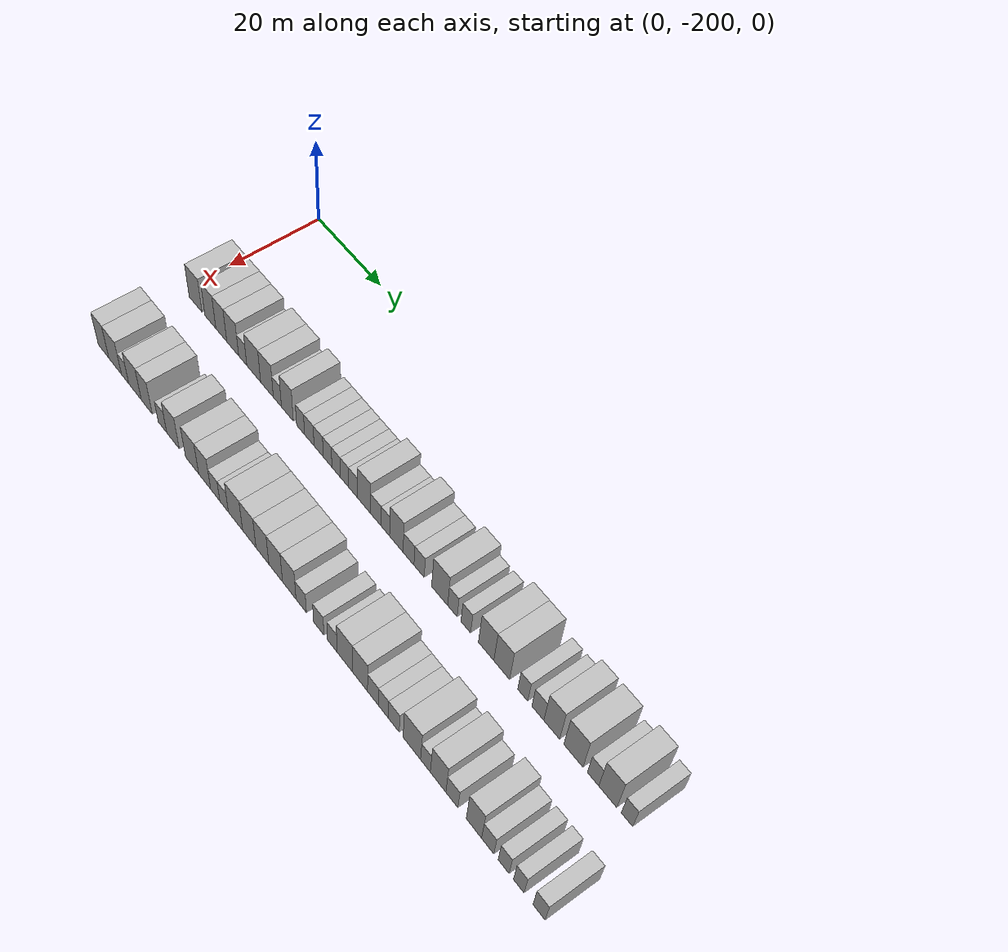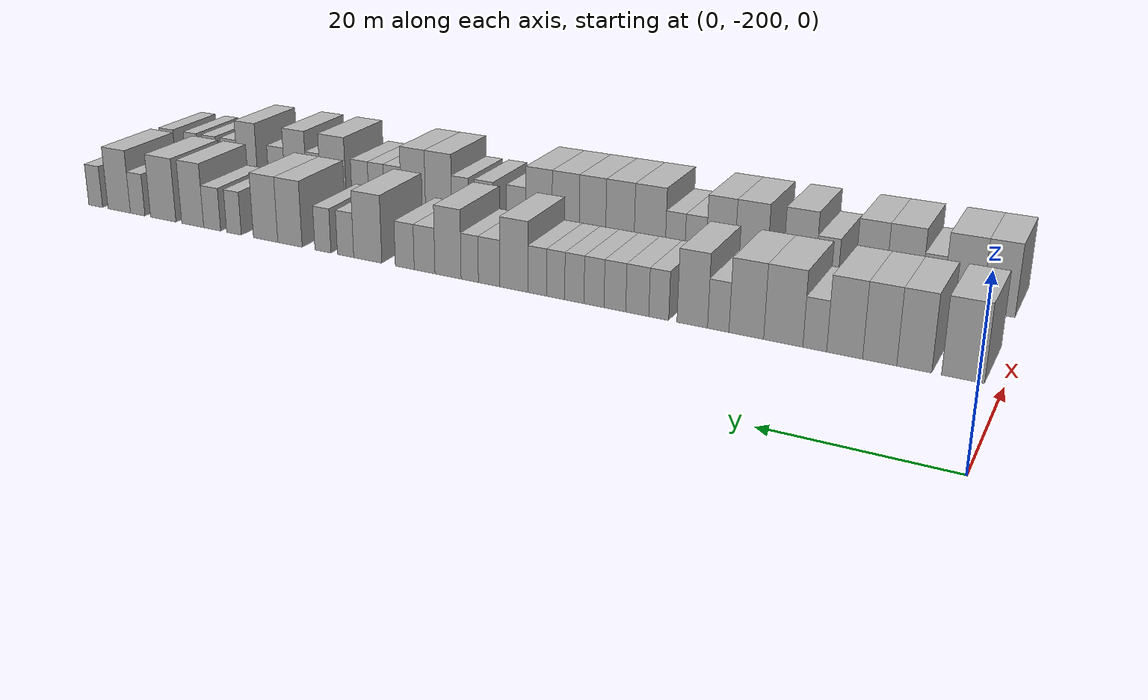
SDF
<sdf version="1.6">
 <world name="default">
  <model name="building_1">
   <static>1</static>
   <pose>25.0000 -195.8124 0 0.000000 0.000000 0.000000</pose>
   <link name="link">
    <pose>0 0 4.50 0 0 0</pose>
    <collision name="collision"><geometry><box><size>10.0000 4.3751 9.0000</size></box></geometry></collision>
    <visual name="visual">
     <cast_shadows>0</cast_shadows>
     <geometry><box><size>10.0000 4.3751 9.0000</size></box></geometry>
     <material>
      <script>
       <uri>model://HANNAS_wall/materials/scripts</uri>
       <uri>model://HANNAS_wall/materials/textures</uri>
       <name>vrc/HANNAS_wall</name>
      </script>
     </material>
    </visual>
   </link>
  </model>
  <model name="building_2">
   <static>1</static>
   <pose>25.0000 -190.7950 0 0.000000 0.000000 0.000000</pose>
   <link name="link">
    <pose>0 0 4.50 0 0 0</pose>
    <collision name="collision"><geometry><box><size>10.0000 3.6598 9.0000</size></box></geometry></collision>
    <visual name="visual">
     <cast_shadows>0</cast_shadows>
     <geometry><box><size>10.0000 3.6598 9.0000</size></box></geometry>
     <material>
      <script>
       <uri>model://HANNAS_wall/materials/scripts</uri>
       <uri>model://HANNAS_wall/materials/textures</uri>
       <name>vrc/HANNAS_wall</name>
      </script>
     </material>
    </visual>
   </link>
  </model>
  <model name="building_3">
   <static>1</static>
   <pose>25.0000 -187.1419 0 0.000000 0.000000 0.000000</pose>
   <link name="link">
    <pose>0 0 4.50 0 0 0</pose>
    <collision name="collision"><geometry><box><size>10.0000 3.6464 9.0000</size></box></geometry></collision>
    <visual name="visual">
     <cast_shadows>0</cast_shadows>
     <geometry><box><size>10.0000 3.6464 9.0000</size></box></geometry>
     <material>
      <script>
       <uri>model://HANNAS_wall/materials/scripts</uri>
       <uri>model://HANNAS_wall/materials/textures</uri>
       <name>vrc/HANNAS_wall</name>
      </script>
     </material>
    </visual>
   </link>
  </model>
  <model name="building_4">
   <static>1</static>
   <pose>25.0000 -183.3582 0 0.000000 0.000000 0.000000</pose>
   <link name="link">
    <pose>0 0 4.50 0 0 0</pose>
    <collision name="collision"><geometry><box><size>10.0000 3.9209 9.0000</size></box></geometry></collision>
    <visual name="visual">
     <cast_shadows>0</cast_shadows>
     <geometry><box><size>10.0000 3.9209 9.0000</size></box></geometry>
     <material>
      <script>
       <uri>model://HANNAS_wall/materials/scripts</uri>
       <uri>model://HANNAS_wall/materials/textures</uri>
       <name>vrc/HANNAS_wall</name>
      </script>
     </material>
    </visual>
   </link>
  </model>
  <model name="building_5">
   <static>1</static>
   <pose>25.0000 -180.0777 0 0.000000 0.000000 0.000000</pose>
   <link name="link">
    <pose>0 0 3.00 0 0 0</pose>
    <collision name="collision"><geometry><box><size>10.0000 2.6402 6.0000</size></box></geometry></collision>
    <visual name="visual">
     <cast_shadows>0</cast_shadows>
     <geometry><box><size>10.0000 2.6402 6.0000</size></box></geometry>
     <material>
      <script>
       <uri>model://HANNAS_wall/materials/scripts</uri>
       <uri>model://HANNAS_wall/materials/textures</uri>
       <name>vrc/HANNAS_wall</name>
      </script>
     </material>
    </visual>
   </link>
  </model>
  <model name="building_6">
   <static>1</static>
   <pose>25.0000 -176.5355 0 0.000000 0.000000 0.000000</pose>
   <link name="link">
    <pose>0 0 4.50 0 0 0</pose>
    <collision name="collision"><geometry><box><size>10.0000 4.4442 9.0000</size></box></geometry></collision>
    <visual name="visual">
     <cast_shadows>0</cast_shadows>
     <geometry><box><size>10.0000 4.4442 9.0000</size></box></geometry>
     <material>
      <script>
       <uri>model://HANNAS_wall/materials/scripts</uri>
       <uri>model://HANNAS_wall/materials/textures</uri>
       <name>vrc/HANNAS_wall</name>
      </script>
     </material>
    </visual>
   </link>
  </model>
  <model name="building_7">
   <static>1</static>
   <pose>25.0000 -172.2996 0 0.000000 0.000000 0.000000</pose>
   <link name="link">
    <pose>0 0 4.50 0 0 0</pose>
    <collision name="collision"><geometry><box><size>10.0000 4.0277 9.0000</size></box></geometry></collision>
    <visual name="visual">
     <cast_shadows>0</cast_shadows>
     <geometry><box><size>10.0000 4.0277 9.0000</size></box></geometry>
     <material>
      <script>
       <uri>model://HANNAS_wall/materials/scripts</uri>
       <uri>model://HANNAS_wall/materials/textures</uri>
       <name>vrc/HANNAS_wall</name>
      </script>
     </material>
    </visual>
   </link>
  </model>
  <model name="building_8">
   <static>1</static>
   <pose>25.0000 -169.0211 0 0.000000 0.000000 0.000000</pose>
   <link name="link">
    <pose>0 0 3.00 0 0 0</pose>
    <collision name="collision"><geometry><box><size>10.0000 2.5293 6.0000</size></box></geometry></collision>
    <visual name="visual">
     <cast_shadows>0</cast_shadows>
     <geometry><box><size>10.0000 2.5293 6.0000</size></box></geometry>
     <material>
      <script>
       <uri>model://HANNAS_wall/materials/scripts</uri>
       <uri>model://HANNAS_wall/materials/textures</uri>
       <name>vrc/HANNAS_wall</name>
      </script>
     </material>
    </visual>
   </link>
  </model>
  <model name="building_9">
   <static>1</static>
   <pose>25.0000 -165.9167 0 0.000000 0.000000 0.000000</pose>
   <link name="link">
    <pose>0 0 4.50 0 0 0</pose>
    <collision name="collision"><geometry><box><size>10.0000 3.6795 9.0000</size></box></geometry></collision>
    <visual name="visual">
     <cast_shadows>0</cast_shadows>
     <geometry><box><size>10.0000 3.6795 9.0000</size></box></geometry>
     <material>
      <script>
       <uri>model://HANNAS_wall/materials/scripts</uri>
       <uri>model://HANNAS_wall/materials/textures</uri>
       <name>vrc/HANNAS_wall</name>
      </script>
     </material>
    </visual>
   </link>
  </model>
  <model name="building_10">
   <static>1</static>
   <pose>25.0000 -161.8491 0 0.000000 0.000000 0.000000</pose>
   <link name="link">
    <pose>0 0 3.00 0 0 0</pose>
    <collision name="collision"><geometry><box><size>10.0000 2.4556 6.0000</size></box></geometry></collision>
    <visual name="visual">
     <cast_shadows>0</cast_shadows>
     <geometry><box><size>10.0000 2.4556 6.0000</size></box></geometry>
     <material>
      <script>
       <uri>model://HANNAS_wall/materials/scripts</uri>
       <uri>model://HANNAS_wall/materials/textures</uri>
       <name>vrc/HANNAS_wall</name>
      </script>
     </material>
    </visual>
   </link>
  </model>
  <model name="building_11">
   <static>1</static>
   <pose>25.0000 -159.1854 0 0.000000 0.000000 0.000000</pose>
   <link name="link">
    <pose>0 0 3.00 0 0 0</pose>
    <collision name="collision"><geometry><box><size>10.0000 2.8718 6.0000</size></box></geometry></collision>
    <visual name="visual">
     <cast_shadows>0</cast_shadows>
     <geometry><box><size>10.0000 2.8718 6.0000</size></box></geometry>
     <material>
      <script>
       <uri>model://HANNAS_wall/materials/scripts</uri>
       <uri>model://HANNAS_wall/materials/textures</uri>
       <name>vrc/HANNAS_wall</name>
      </script>
     </material>
    </visual>
   </link>
  </model>
  <model name="building_12">
   <static>1</static>
   <pose>25.0000 -156.3743 0 0.000000 0.000000 0.000000</pose>
   <link name="link">
    <pose>0 0 3.00 0 0 0</pose>
    <collision name="collision"><geometry><box><size>10.0000 2.7504 6.0000</size></box></geometry></collision>
    <visual name="visual">
     <cast_shadows>0</cast_shadows>
     <geometry><box><size>10.0000 2.7504 6.0000</size></box></geometry>
     <material>
      <script>
       <uri>model://HANNAS_wall/materials/scripts</uri>
       <uri>model://HANNAS_wall/materials/textures</uri>
       <name>vrc/HANNAS_wall</name>
      </script>
     </material>
    </visual>
   </link>
  </model>
  <model name="building_13">
   <static>1</static>
   <pose>25.0000 -153.7160 0 0.000000 0.000000 0.000000</pose>
   <link name="link">
    <pose>0 0 3.00 0 0 0</pose>
    <collision name="collision"><geometry><box><size>10.0000 2.5661 6.0000</size></box></geometry></collision>
    <visual name="visual">
     <cast_shadows>0</cast_shadows>
     <geometry><box><size>10.0000 2.5661 6.0000</size></box></geometry>
     <material>
      <script>
       <uri>model://HANNAS_wall/materials/scripts</uri>
       <uri>model://HANNAS_wall/materials/textures</uri>
       <name>vrc/HANNAS_wall</name>
      </script>
     </material>
    </visual>
   </link>
  </model>
  <model name="building_14">
   <static>1</static>
   <pose>25.0000 -151.1776 0 0.000000 0.000000 0.000000</pose>
   <link name="link">
    <pose>0 0 3.00 0 0 0</pose>
    <collision name="collision"><geometry><box><size>10.0000 2.5106 6.0000</size></box></geometry></collision>
    <visual name="visual">
     <cast_shadows>0</cast_shadows>
     <geometry><box><size>10.0000 2.5106 6.0000</size></box></geometry>
     <material>
      <script>
       <uri>model://HANNAS_wall/materials/scripts</uri>
       <uri>model://HANNAS_wall/materials/textures</uri>
       <name>vrc/HANNAS_wall</name>
      </script>
     </material>
    </visual>
   </link>
  </model>
  <model name="building_15">
   <static>1</static>
   <pose>25.0000 -148.7211 0 0.000000 0.000000 0.000000</pose>
   <link name="link">
    <pose>0 0 3.00 0 0 0</pose>
    <collision name="collision"><geometry><box><size>10.0000 2.4023 6.0000</size></box></geometry></collision>
    <visual name="visual">
     <cast_shadows>0</cast_shadows>
     <geometry><box><size>10.0000 2.4023 6.0000</size></box></geometry>
     <material>
      <script>
       <uri>model://HANNAS_wall/materials/scripts</uri>
       <uri>model://HANNAS_wall/materials/textures</uri>
       <name>vrc/HANNAS_wall</name>
      </script>
     </material>
    </visual>
   </link>
  </model>
  <model name="building_16">
   <static>1</static>
   <pose>25.0000 -146.2873 0 0.000000 0.000000 0.000000</pose>
   <link name="link">
    <pose>0 0 3.00 0 0 0</pose>
    <collision name="collision"><geometry><box><size>10.0000 2.4653 6.0000</size></box></geometry></collision>
    <visual name="visual">
     <cast_shadows>0</cast_shadows>
     <geometry><box><size>10.0000 2.4653 6.0000</size></box></geometry>
     <material>
      <script>
       <uri>model://HANNAS_wall/materials/scripts</uri>
       <uri>model://HANNAS_wall/materials/textures</uri>
       <name>vrc/HANNAS_wall</name>
      </script>
     </material>
    </visual>
   </link>
  </model>
  <model name="building_17">
   <static>1</static>
   <pose>25.0000 -143.1473 0 0.000000 0.000000 0.000000</pose>
   <link name="link">
    <pose>0 0 4.50 0 0 0</pose>
    <collision name="collision"><geometry><box><size>10.0000 3.8147 9.0000</size></box></geometry></collision>
    <visual name="visual">
     <cast_shadows>0</cast_shadows>
     <geometry><box><size>10.0000 3.8147 9.0000</size></box></geometry>
     <material>
      <script>
       <uri>model://HANNAS_wall/materials/scripts</uri>
       <uri>model://HANNAS_wall/materials/textures</uri>
       <name>vrc/HANNAS_wall</name>
      </script>
     </material>
    </visual>
   </link>
  </model>
  <model name="building_18">
   <static>1</static>
   <pose>25.0000 -139.7681 0 0.000000 0.000000 0.000000</pose>
   <link name="link">
    <pose>0 0 3.00 0 0 0</pose>
    <collision name="collision"><geometry><box><size>10.0000 2.9437 6.0000</size></box></geometry></collision>
    <visual name="visual">
     <cast_shadows>0</cast_shadows>
     <geometry><box><size>10.0000 2.9437 6.0000</size></box></geometry>
     <material>
      <script>
       <uri>model://HANNAS_wall/materials/scripts</uri>
       <uri>model://HANNAS_wall/materials/textures</uri>
       <name>vrc/HANNAS_wall</name>
      </script>
     </material>
    </visual>
   </link>
  </model>
  <model name="building_19">
   <static>1</static>
   <pose>25.0000 -137.0899 0 0.000000 0.000000 0.000000</pose>
   <link name="link">
    <pose>0 0 3.00 0 0 0</pose>
    <collision name="collision"><geometry><box><size>10.0000 2.4126 6.0000</size></box></geometry></collision>
    <visual name="visual">
     <cast_shadows>0</cast_shadows>
     <geometry><box><size>10.0000 2.4126 6.0000</size></box></geometry>
     <material>
      <script>
       <uri>model://HANNAS_wall/materials/scripts</uri>
       <uri>model://HANNAS_wall/materials/textures</uri>
       <name>vrc/HANNAS_wall</name>
      </script>
     </material>
    </visual>
   </link>
  </model>
  <model name="building_20">
   <static>1</static>
   <pose>25.0000 -134.0270 0 0.000000 0.000000 0.000000</pose>
   <link name="link">
    <pose>0 0 4.50 0 0 0</pose>
    <collision name="collision"><geometry><box><size>10.0000 3.7131 9.0000</size></box></geometry></collision>
    <visual name="visual">
     <cast_shadows>0</cast_shadows>
     <geometry><box><size>10.0000 3.7131 9.0000</size></box></geometry>
     <material>
      <script>
       <uri>model://HANNAS_wall/materials/scripts</uri>
       <uri>model://HANNAS_wall/materials/textures</uri>
       <name>vrc/HANNAS_wall</name>
      </script>
     </material>
    </visual>
   </link>
  </model>
  <model name="building_21">
   <static>1</static>
   <pose>25.0000 -130.6746 0 0.000000 0.000000 0.000000</pose>
   <link name="link">
    <pose>0 0 3.00 0 0 0</pose>
    <collision name="collision"><geometry><box><size>10.0000 2.9919 6.0000</size></box></geometry></collision>
    <visual name="visual">
     <cast_shadows>0</cast_shadows>
     <geometry><box><size>10.0000 2.9919 6.0000</size></box></geometry>
     <material>
      <script>
       <uri>model://HANNAS_wall/materials/scripts</uri>
       <uri>model://HANNAS_wall/materials/textures</uri>
       <name>vrc/HANNAS_wall</name>
      </script>
     </material>
    </visual>
   </link>
  </model>
  <model name="building_22">
   <static>1</static>
   <pose>25.0000 -127.7962 0 0.000000 0.000000 0.000000</pose>
   <link name="link">
    <pose>0 0 3.00 0 0 0</pose>
    <collision name="collision"><geometry><box><size>10.0000 2.7648 6.0000</size></box></geometry></collision>
    <visual name="visual">
     <cast_shadows>0</cast_shadows>
     <geometry><box><size>10.0000 2.7648 6.0000</size></box></geometry>
     <material>
      <script>
       <uri>model://HANNAS_wall/materials/scripts</uri>
       <uri>model://HANNAS_wall/materials/textures</uri>
       <name>vrc/HANNAS_wall</name>
      </script>
     </material>
    </visual>
   </link>
  </model>
  <model name="building_23">
   <static>1</static>
   <pose>25.0000 -122.2957 0 0.000000 0.000000 0.000000</pose>
   <link name="link">
    <pose>0 0 4.50 0 0 0</pose>
    <collision name="collision"><geometry><box><size>10.0000 4.2361 9.0000</size></box></geometry></collision>
    <visual name="visual">
     <cast_shadows>0</cast_shadows>
     <geometry><box><size>10.0000 4.2361 9.0000</size></box></geometry>
     <material>
      <script>
       <uri>model://HANNAS_wall/materials/scripts</uri>
       <uri>model://HANNAS_wall/materials/textures</uri>
       <name>vrc/HANNAS_wall</name>
      </script>
     </material>
    </visual>
   </link>
  </model>
  <model name="building_24">
   <static>1</static>
   <pose>25.0000 -118.9344 0 0.000000 0.000000 0.000000</pose>
   <link name="link">
    <pose>0 0 3.00 0 0 0</pose>
    <collision name="collision"><geometry><box><size>10.0000 2.4865 6.0000</size></box></geometry></collision>
    <visual name="visual">
     <cast_shadows>0</cast_shadows>
     <geometry><box><size>10.0000 2.4865 6.0000</size></box></geometry>
     <material>
      <script>
       <uri>model://HANNAS_wall/materials/scripts</uri>
       <uri>model://HANNAS_wall/materials/textures</uri>
       <name>vrc/HANNAS_wall</name>
      </script>
     </material>
    </visual>
   </link>
  </model>
  <model name="building_25">
   <static>1</static>
   <pose>25.0000 -115.4437 0 0.000000 0.000000 0.000000</pose>
   <link name="link">
    <pose>0 0 3.00 0 0 0</pose>
    <collision name="collision"><geometry><box><size>10.0000 2.4949 6.0000</size></box></geometry></collision>
    <visual name="visual">
     <cast_shadows>0</cast_shadows>
     <geometry><box><size>10.0000 2.4949 6.0000</size></box></geometry>
     <material>
      <script>
       <uri>model://HANNAS_wall/materials/scripts</uri>
       <uri>model://HANNAS_wall/materials/textures</uri>
       <name>vrc/HANNAS_wall</name>
      </script>
     </material>
    </visual>
   </link>
  </model>
  <model name="building_26">
   <static>1</static>
   <pose>25.0000 -110.2514 0 0.000000 0.000000 0.000000</pose>
   <link name="link">
    <pose>0 0 4.50 0 0 0</pose>
    <collision name="collision"><geometry><box><size>10.0000 3.8897 9.0000</size></box></geometry></collision>
    <visual name="visual">
     <cast_shadows>0</cast_shadows>
     <geometry><box><size>10.0000 3.8897 9.0000</size></box></geometry>
     <material>
      <script>
       <uri>model://HANNAS_wall/materials/scripts</uri>
       <uri>model://HANNAS_wall/materials/textures</uri>
       <name>vrc/HANNAS_wall</name>
      </script>
     </material>
    </visual>
   </link>
  </model>
  <model name="building_27">
   <static>1</static>
   <pose>25.0000 -106.3323 0 0.000000 0.000000 0.000000</pose>
   <link name="link">
    <pose>0 0 4.50 0 0 0</pose>
    <collision name="collision"><geometry><box><size>10.0000 3.9485 9.0000</size></box></geometry></collision>
    <visual name="visual">
     <cast_shadows>0</cast_shadows>
     <geometry><box><size>10.0000 3.9485 9.0000</size></box></geometry>
     <material>
      <script>
       <uri>model://HANNAS_wall/materials/scripts</uri>
       <uri>model://HANNAS_wall/materials/textures</uri>
       <name>vrc/HANNAS_wall</name>
      </script>
     </material>
    </visual>
   </link>
  </model>
  <model name="building_28">
   <static>1</static>
   <pose>25.0000 -101.1371 0 0.000000 0.000000 0.000000</pose>
   <link name="link">
    <pose>0 0 3.00 0 0 0</pose>
    <collision name="collision"><geometry><box><size>10.0000 2.4418 6.0000</size></box></geometry></collision>
    <visual name="visual">
     <cast_shadows>0</cast_shadows>
     <geometry><box><size>10.0000 2.4418 6.0000</size></box></geometry>
     <material>
      <script>
       <uri>model://HANNAS_wall/materials/scripts</uri>
       <uri>model://HANNAS_wall/materials/textures</uri>
       <name>vrc/HANNAS_wall</name>
      </script>
     </material>
    </visual>
   </link>
  </model>
  <model name="building_29">
   <static>1</static>
   <pose>25.0000 -97.4838 0 0.000000 0.000000 0.000000</pose>
   <link name="link">
    <pose>0 0 3.00 0 0 0</pose>
    <collision name="collision"><geometry><box><size>10.0000 2.8649 6.0000</size></box></geometry></collision>
    <visual name="visual">
     <cast_shadows>0</cast_shadows>
     <geometry><box><size>10.0000 2.8649 6.0000</size></box></geometry>
     <material>
      <script>
       <uri>model://HANNAS_wall/materials/scripts</uri>
       <uri>model://HANNAS_wall/materials/textures</uri>
       <name>vrc/HANNAS_wall</name>
      </script>
     </material>
    </visual>
   </link>
  </model>
  <model name="building_30">
   <static>1</static>
   <pose>25.0000 -94.1622 0 0.000000 0.000000 0.000000</pose>
   <link name="link">
    <pose>0 0 4.50 0 0 0</pose>
    <collision name="collision"><geometry><box><size>10.0000 3.7783 9.0000</size></box></geometry></collision>
    <visual name="visual">
     <cast_shadows>0</cast_shadows>
     <geometry><box><size>10.0000 3.7783 9.0000</size></box></geometry>
     <material>
      <script>
       <uri>model://HANNAS_wall/materials/scripts</uri>
       <uri>model://HANNAS_wall/materials/textures</uri>
       <name>vrc/HANNAS_wall</name>
      </script>
     </material>
    </visual>
   </link>
  </model>
  <model name="building_31">
   <static>1</static>
   <pose>25.0000 -89.0398 0 0.000000 0.000000 0.000000</pose>
   <link name="link">
    <pose>0 0 4.50 0 0 0</pose>
    <collision name="collision"><geometry><box><size>10.0000 4.4664 9.0000</size></box></geometry></collision>
    <visual name="visual">
     <cast_shadows>0</cast_shadows>
     <geometry><box><size>10.0000 4.4664 9.0000</size></box></geometry>
     <material>
      <script>
       <uri>model://HANNAS_wall/materials/scripts</uri>
       <uri>model://HANNAS_wall/materials/textures</uri>
       <name>vrc/HANNAS_wall</name>
      </script>
     </material>
    </visual>
   </link>
  </model>
  <model name="building_32">
   <static>1</static>
   <pose>25.0000 -84.5046 0 0.000000 0.000000 0.000000</pose>
   <link name="link">
    <pose>0 0 3.00 0 0 0</pose>
    <collision name="collision"><geometry><box><size>10.0000 2.6039 6.0000</size></box></geometry></collision>
    <visual name="visual">
     <cast_shadows>0</cast_shadows>
     <geometry><box><size>10.0000 2.6039 6.0000</size></box></geometry>
     <material>
      <script>
       <uri>model://HANNAS_wall/materials/scripts</uri>
       <uri>model://HANNAS_wall/materials/textures</uri>
       <name>vrc/HANNAS_wall</name>
      </script>
     </material>
    </visual>
   </link>
  </model>
  <model name="building_33">
   <static>1</static>
   <pose>25.0000 -81.1677 0 0.000000 0.000000 0.000000</pose>
   <link name="link">
    <pose>0 0 4.50 0 0 0</pose>
    <collision name="collision"><geometry><box><size>10.0000 4.0699 9.0000</size></box></geometry></collision>
    <visual name="visual">
     <cast_shadows>0</cast_shadows>
     <geometry><box><size>10.0000 4.0699 9.0000</size></box></geometry>
     <material>
      <script>
       <uri>model://HANNAS_wall/materials/scripts</uri>
       <uri>model://HANNAS_wall/materials/textures</uri>
       <name>vrc/HANNAS_wall</name>
      </script>
     </material>
    </visual>
   </link>
  </model>
  <model name="building_34">
   <static>1</static>
   <pose>25.0000 -76.8595 0 0.000000 0.000000 0.000000</pose>
   <link name="link">
    <pose>0 0 3.00 0 0 0</pose>
    <collision name="collision"><geometry><box><size>10.0000 2.5464 6.0000</size></box></geometry></collision>
    <visual name="visual">
     <cast_shadows>0</cast_shadows>
     <geometry><box><size>10.0000 2.5464 6.0000</size></box></geometry>
     <material>
      <script>
       <uri>model://HANNAS_wall/materials/scripts</uri>
       <uri>model://HANNAS_wall/materials/textures</uri>
       <name>vrc/HANNAS_wall</name>
      </script>
     </material>
    </visual>
   </link>
  </model>
  <model name="building_102">
   <static>1</static>
   <pose>44.0000 -196.1315 0 0.000000 0.000000 0.000000</pose>
   <link name="link">
    <pose>0 0 4.50 0 0 0</pose>
    <collision name="collision"><geometry><box><size>10.0000 3.7370 9.0000</size></box></geometry></collision>
    <visual name="visual">
     <cast_shadows>0</cast_shadows>
     <geometry><box><size>10.0000 3.7370 9.0000</size></box></geometry>
     <material>
      <script>
       <uri>model://HANNAS_wall/materials/scripts</uri>
       <uri>model://HANNAS_wall/materials/textures</uri>
       <name>vrc/HANNAS_wall</name>
      </script>
     </material>
    </visual>
   </link>
  </model>
  <model name="building_103">
   <static>1</static>
   <pose>44.0000 -192.0596 0 0.000000 0.000000 0.000000</pose>
   <link name="link">
    <pose>0 0 4.50 0 0 0</pose>
    <collision name="collision"><geometry><box><size>10.0000 4.4067 9.0000</size></box></geometry></collision>
    <visual name="visual">
     <cast_shadows>0</cast_shadows>
     <geometry><box><size>10.0000 4.4067 9.0000</size></box></geometry>
     <material>
      <script>
       <uri>model://HANNAS_wall/materials/scripts</uri>
       <uri>model://HANNAS_wall/materials/textures</uri>
       <name>vrc/HANNAS_wall</name>
      </script>
     </material>
    </visual>
   </link>
  </model>
  <model name="building_104">
   <static>1</static>
   <pose>44.0000 -188.5721 0 0.000000 0.000000 0.000000</pose>
   <link name="link">
    <pose>0 0 3.00 0 0 0</pose>
    <collision name="collision"><geometry><box><size>10.0000 2.5683 6.0000</size></box></geometry></collision>
    <visual name="visual">
     <cast_shadows>0</cast_shadows>
     <geometry><box><size>10.0000 2.5683 6.0000</size></box></geometry>
     <material>
      <script>
       <uri>model://HANNAS_wall/materials/scripts</uri>
       <uri>model://HANNAS_wall/materials/textures</uri>
       <name>vrc/HANNAS_wall</name>
      </script>
     </material>
    </visual>
   </link>
  </model>
  <model name="building_105">
   <static>1</static>
   <pose>44.0000 -185.1751 0 0.000000 0.000000 0.000000</pose>
   <link name="link">
    <pose>0 0 4.50 0 0 0</pose>
    <collision name="collision"><geometry><box><size>10.0000 4.2258 9.0000</size></box></geometry></collision>
    <visual name="visual">
     <cast_shadows>0</cast_shadows>
     <geometry><box><size>10.0000 4.2258 9.0000</size></box></geometry>
     <material>
      <script>
       <uri>model://HANNAS_wall/materials/scripts</uri>
       <uri>model://HANNAS_wall/materials/textures</uri>
       <name>vrc/HANNAS_wall</name>
      </script>
     </material>
    </visual>
   </link>
  </model>
  <model name="building_106">
   <static>1</static>
   <pose>44.0000 -181.2119 0 0.000000 0.000000 0.000000</pose>
   <link name="link">
    <pose>0 0 4.50 0 0 0</pose>
    <collision name="collision"><geometry><box><size>10.0000 3.7006 9.0000</size></box></geometry></collision>
    <visual name="visual">
     <cast_shadows>0</cast_shadows>
     <geometry><box><size>10.0000 3.7006 9.0000</size></box></geometry>
     <material>
      <script>
       <uri>model://HANNAS_wall/materials/scripts</uri>
       <uri>model://HANNAS_wall/materials/textures</uri>
       <name>vrc/HANNAS_wall</name>
      </script>
     </material>
    </visual>
   </link>
  </model>
  <model name="building_107">
   <static>1</static>
   <pose>44.0000 -175.9569 0 0.000000 0.000000 0.000000</pose>
   <link name="link">
    <pose>0 0 3.00 0 0 0</pose>
    <collision name="collision"><geometry><box><size>10.0000 2.8093 6.0000</size></box></geometry></collision>
    <visual name="visual">
     <cast_shadows>0</cast_shadows>
     <geometry><box><size>10.0000 2.8093 6.0000</size></box></geometry>
     <material>
      <script>
       <uri>model://HANNAS_wall/materials/scripts</uri>
       <uri>model://HANNAS_wall/materials/textures</uri>
       <name>vrc/HANNAS_wall</name>
      </script>
     </material>
    </visual>
   </link>
  </model>
  <model name="building_108">
   <static>1</static>
   <pose>44.0000 -172.5169 0 0.000000 0.000000 0.000000</pose>
   <link name="link">
    <pose>0 0 4.50 0 0 0</pose>
    <collision name="collision"><geometry><box><size>10.0000 4.0707 9.0000</size></box></geometry></collision>
    <visual name="visual">
     <cast_shadows>0</cast_shadows>
     <geometry><box><size>10.0000 4.0707 9.0000</size></box></geometry>
     <material>
      <script>
       <uri>model://HANNAS_wall/materials/scripts</uri>
       <uri>model://HANNAS_wall/materials/textures</uri>
       <name>vrc/HANNAS_wall</name>
      </script>
     </material>
    </visual>
   </link>
  </model>
  <model name="building_109">
   <static>1</static>
   <pose>44.0000 -166.3726 0 0.000000 0.000000 0.000000</pose>
   <link name="link">
    <pose>0 0 4.50 0 0 0</pose>
    <collision name="collision"><geometry><box><size>10.0000 4.2178 9.0000</size></box></geometry></collision>
    <visual name="visual">
     <cast_shadows>0</cast_shadows>
     <geometry><box><size>10.0000 4.2178 9.0000</size></box></geometry>
     <material>
      <script>
       <uri>model://HANNAS_wall/materials/scripts</uri>
       <uri>model://HANNAS_wall/materials/textures</uri>
       <name>vrc/HANNAS_wall</name>
      </script>
     </material>
    </visual>
   </link>
  </model>
  <model name="building_110">
   <static>1</static>
   <pose>44.0000 -162.3774 0 0.000000 0.000000 0.000000</pose>
   <link name="link">
    <pose>0 0 4.50 0 0 0</pose>
    <collision name="collision"><geometry><box><size>10.0000 3.7727 9.0000</size></box></geometry></collision>
    <visual name="visual">
     <cast_shadows>0</cast_shadows>
     <geometry><box><size>10.0000 3.7727 9.0000</size></box></geometry>
     <material>
      <script>
       <uri>model://HANNAS_wall/materials/scripts</uri>
       <uri>model://HANNAS_wall/materials/textures</uri>
       <name>vrc/HANNAS_wall</name>
      </script>
     </material>
    </visual>
   </link>
  </model>
  <model name="building_111">
   <static>1</static>
   <pose>44.0000 -159.0736 0 0.000000 0.000000 0.000000</pose>
   <link name="link">
    <pose>0 0 3.00 0 0 0</pose>
    <collision name="collision"><geometry><box><size>10.0000 2.8348 6.0000</size></box></geometry></collision>
    <visual name="visual">
     <cast_shadows>0</cast_shadows>
     <geometry><box><size>10.0000 2.8348 6.0000</size></box></geometry>
     <material>
      <script>
       <uri>model://HANNAS_wall/materials/scripts</uri>
       <uri>model://HANNAS_wall/materials/textures</uri>
       <name>vrc/HANNAS_wall</name>
      </script>
     </material>
    </visual>
   </link>
  </model>
  <model name="building_112">
   <static>1</static>
   <pose>44.0000 -156.3240 0 0.000000 0.000000 0.000000</pose>
   <link name="link">
    <pose>0 0 3.00 0 0 0</pose>
    <collision name="collision"><geometry><box><size>10.0000 2.6645 6.0000</size></box></geometry></collision>
    <visual name="visual">
     <cast_shadows>0</cast_shadows>
     <geometry><box><size>10.0000 2.6645 6.0000</size></box></geometry>
     <material>
      <script>
       <uri>model://HANNAS_wall/materials/scripts</uri>
       <uri>model://HANNAS_wall/materials/textures</uri>
       <name>vrc/HANNAS_wall</name>
      </script>
     </material>
    </visual>
   </link>
  </model>
  <model name="building_113">
   <static>1</static>
   <pose>44.0000 -152.8316 0 0.000000 0.000000 0.000000</pose>
   <link name="link">
    <pose>0 0 4.50 0 0 0</pose>
    <collision name="collision"><geometry><box><size>10.0000 4.3202 9.0000</size></box></geometry></collision>
    <visual name="visual">
     <cast_shadows>0</cast_shadows>
     <geometry><box><size>10.0000 4.3202 9.0000</size></box></geometry>
     <material>
      <script>
       <uri>model://HANNAS_wall/materials/scripts</uri>
       <uri>model://HANNAS_wall/materials/textures</uri>
       <name>vrc/HANNAS_wall</name>
      </script>
     </material>
    </visual>
   </link>
  </model>
  <model name="building_114">
   <static>1</static>
   <pose>44.0000 -148.6669 0 0.000000 0.000000 0.000000</pose>
   <link name="link">
    <pose>0 0 4.50 0 0 0</pose>
    <collision name="collision"><geometry><box><size>10.0000 4.0091 9.0000</size></box></geometry></collision>
    <visual name="visual">
     <cast_shadows>0</cast_shadows>
     <geometry><box><size>10.0000 4.0091 9.0000</size></box></geometry>
     <material>
      <script>
       <uri>model://HANNAS_wall/materials/scripts</uri>
       <uri>model://HANNAS_wall/materials/textures</uri>
       <name>vrc/HANNAS_wall</name>
      </script>
     </material>
    </visual>
   </link>
  </model>
  <model name="building_115">
   <static>1</static>
   <pose>44.0000 -144.7632 0 0.000000 0.000000 0.000000</pose>
   <link name="link">
    <pose>0 0 4.50 0 0 0</pose>
    <collision name="collision"><geometry><box><size>10.0000 3.7985 9.0000</size></box></geometry></collision>
    <visual name="visual">
     <cast_shadows>0</cast_shadows>
     <geometry><box><size>10.0000 3.7985 9.0000</size></box></geometry>
     <material>
      <script>
       <uri>model://HANNAS_wall/materials/scripts</uri>
       <uri>model://HANNAS_wall/materials/textures</uri>
       <name>vrc/HANNAS_wall</name>
      </script>
     </material>
    </visual>
   </link>
  </model>
  <model name="building_116">
   <static>1</static>
   <pose>44.0000 -140.8834 0 0.000000 0.000000 0.000000</pose>
   <link name="link">
    <pose>0 0 4.50 0 0 0</pose>
    <collision name="collision"><geometry><box><size>10.0000 3.9610 9.0000</size></box></geometry></collision>
    <visual name="visual">
     <cast_shadows>0</cast_shadows>
     <geometry><box><size>10.0000 3.9610 9.0000</size></box></geometry>
     <material>
      <script>
       <uri>model://HANNAS_wall/materials/scripts</uri>
       <uri>model://HANNAS_wall/materials/textures</uri>
       <name>vrc/HANNAS_wall</name>
      </script>
     </material>
    </visual>
   </link>
  </model>
  <model name="building_117">
   <static>1</static>
   <pose>44.0000 -136.9666 0 0.000000 0.000000 0.000000</pose>
   <link name="link">
    <pose>0 0 4.50 0 0 0</pose>
    <collision name="collision"><geometry><box><size>10.0000 3.8727 9.0000</size></box></geometry></collision>
    <visual name="visual">
     <cast_shadows>0</cast_shadows>
     <geometry><box><size>10.0000 3.8727 9.0000</size></box></geometry>
     <material>
      <script>
       <uri>model://HANNAS_wall/materials/scripts</uri>
       <uri>model://HANNAS_wall/materials/textures</uri>
       <name>vrc/HANNAS_wall</name>
      </script>
     </material>
    </visual>
   </link>
  </model>
  <model name="building_118">
   <static>1</static>
   <pose>44.0000 -133.5573 0 0.000000 0.000000 0.000000</pose>
   <link name="link">
    <pose>0 0 3.00 0 0 0</pose>
    <collision name="collision"><geometry><box><size>10.0000 2.9457 6.0000</size></box></geometry></collision>
    <visual name="visual">
     <cast_shadows>0</cast_shadows>
     <geometry><box><size>10.0000 2.9457 6.0000</size></box></geometry>
     <material>
      <script>
       <uri>model://HANNAS_wall/materials/scripts</uri>
       <uri>model://HANNAS_wall/materials/textures</uri>
       <name>vrc/HANNAS_wall</name>
      </script>
     </material>
    </visual>
   </link>
  </model>
  <model name="building_119">
   <static>1</static>
   <pose>44.0000 -128.6454 0 0.000000 0.000000 0.000000</pose>
   <link name="link">
    <pose>0 0 3.00 0 0 0</pose>
    <collision name="collision"><geometry><box><size>10.0000 2.8781 6.0000</size></box></geometry></collision>
    <visual name="visual">
     <cast_shadows>0</cast_shadows>
     <geometry><box><size>10.0000 2.8781 6.0000</size></box></geometry>
     <material>
      <script>
       <uri>model://HANNAS_wall/materials/scripts</uri>
       <uri>model://HANNAS_wall/materials/textures</uri>
       <name>vrc/HANNAS_wall</name>
      </script>
     </material>
    </visual>
   </link>
  </model>
  <model name="building_120">
   <static>1</static>
   <pose>44.0000 -124.8894 0 0.000000 0.000000 0.000000</pose>
   <link name="link">
    <pose>0 0 3.00 0 0 0</pose>
    <collision name="collision"><geometry><box><size>10.0000 2.6340 6.0000</size></box></geometry></collision>
    <visual name="visual">
     <cast_shadows>0</cast_shadows>
     <geometry><box><size>10.0000 2.6340 6.0000</size></box></geometry>
     <material>
      <script>
       <uri>model://HANNAS_wall/materials/scripts</uri>
       <uri>model://HANNAS_wall/materials/textures</uri>
       <name>vrc/HANNAS_wall</name>
      </script>
     </material>
    </visual>
   </link>
  </model>
  <model name="building_121">
   <static>1</static>
   <pose>44.0000 -121.4827 0 0.000000 0.000000 0.000000</pose>
   <link name="link">
    <pose>0 0 4.50 0 0 0</pose>
    <collision name="collision"><geometry><box><size>10.0000 4.1794 9.0000</size></box></geometry></collision>
    <visual name="visual">
     <cast_shadows>0</cast_shadows>
     <geometry><box><size>10.0000 4.1794 9.0000</size></box></geometry>
     <material>
      <script>
       <uri>model://HANNAS_wall/materials/scripts</uri>
       <uri>model://HANNAS_wall/materials/textures</uri>
       <name>vrc/HANNAS_wall</name>
      </script>
     </material>
    </visual>
   </link>
  </model>
  <model name="building_122">
   <static>1</static>
   <pose>44.0000 -117.4063 0 0.000000 0.000000 0.000000</pose>
   <link name="link">
    <pose>0 0 4.50 0 0 0</pose>
    <collision name="collision"><geometry><box><size>10.0000 3.9733 9.0000</size></box></geometry></collision>
    <visual name="visual">
     <cast_shadows>0</cast_shadows>
     <geometry><box><size>10.0000 3.9733 9.0000</size></box></geometry>
     <material>
      <script>
       <uri>model://HANNAS_wall/materials/scripts</uri>
       <uri>model://HANNAS_wall/materials/textures</uri>
       <name>vrc/HANNAS_wall</name>
      </script>
     </material>
    </visual>
   </link>
  </model>
  <model name="building_123">
   <static>1</static>
   <pose>44.0000 -114.0094 0 0.000000 0.000000 0.000000</pose>
   <link name="link">
    <pose>0 0 3.00 0 0 0</pose>
    <collision name="collision"><geometry><box><size>10.0000 2.8205 6.0000</size></box></geometry></collision>
    <visual name="visual">
     <cast_shadows>0</cast_shadows>
     <geometry><box><size>10.0000 2.8205 6.0000</size></box></geometry>
     <material>
      <script>
       <uri>model://HANNAS_wall/materials/scripts</uri>
       <uri>model://HANNAS_wall/materials/textures</uri>
       <name>vrc/HANNAS_wall</name>
      </script>
     </material>
    </visual>
   </link>
  </model>
  <model name="building_124">
   <static>1</static>
   <pose>44.0000 -111.3133 0 0.000000 0.000000 0.000000</pose>
   <link name="link">
    <pose>0 0 3.00 0 0 0</pose>
    <collision name="collision"><geometry><box><size>10.0000 2.5717 6.0000</size></box></geometry></collision>
    <visual name="visual">
     <cast_shadows>0</cast_shadows>
     <geometry><box><size>10.0000 2.5717 6.0000</size></box></geometry>
     <material>
      <script>
       <uri>model://HANNAS_wall/materials/scripts</uri>
       <uri>model://HANNAS_wall/materials/textures</uri>
       <name>vrc/HANNAS_wall</name>
      </script>
     </material>
    </visual>
   </link>
  </model>
  <model name="building_125">
   <static>1</static>
   <pose>44.0000 -108.6091 0 0.000000 0.000000 0.000000</pose>
   <link name="link">
    <pose>0 0 3.00 0 0 0</pose>
    <collision name="collision"><geometry><box><size>10.0000 2.8367 6.0000</size></box></geometry></collision>
    <visual name="visual">
     <cast_shadows>0</cast_shadows>
     <geometry><box><size>10.0000 2.8367 6.0000</size></box></geometry>
     <material>
      <script>
       <uri>model://HANNAS_wall/materials/scripts</uri>
       <uri>model://HANNAS_wall/materials/textures</uri>
       <name>vrc/HANNAS_wall</name>
      </script>
     </material>
    </visual>
   </link>
  </model>
  <model name="building_126">
   <static>1</static>
   <pose>44.0000 -103.9873 0 0.000000 0.000000 0.000000</pose>
   <link name="link">
    <pose>0 0 4.50 0 0 0</pose>
    <collision name="collision"><geometry><box><size>10.0000 4.4068 9.0000</size></box></geometry></collision>
    <visual name="visual">
     <cast_shadows>0</cast_shadows>
     <geometry><box><size>10.0000 4.4068 9.0000</size></box></geometry>
     <material>
      <script>
       <uri>model://HANNAS_wall/materials/scripts</uri>
       <uri>model://HANNAS_wall/materials/textures</uri>
       <name>vrc/HANNAS_wall</name>
      </script>
     </material>
    </visual>
   </link>
  </model>
  <model name="building_127">
   <static>1</static>
   <pose>44.0000 -100.5701 0 0.000000 0.000000 0.000000</pose>
   <link name="link">
    <pose>0 0 3.00 0 0 0</pose>
    <collision name="collision"><geometry><box><size>10.0000 2.4276 6.0000</size></box></geometry></collision>
    <visual name="visual">
     <cast_shadows>0</cast_shadows>
     <geometry><box><size>10.0000 2.4276 6.0000</size></box></geometry>
     <material>
      <script>
       <uri>model://HANNAS_wall/materials/scripts</uri>
       <uri>model://HANNAS_wall/materials/textures</uri>
       <name>vrc/HANNAS_wall</name>
      </script>
     </material>
    </visual>
   </link>
  </model>
  <model name="building_128">
   <static>1</static>
   <pose>44.0000 -97.4337 0 0.000000 0.000000 0.000000</pose>
   <link name="link">
    <pose>0 0 4.50 0 0 0</pose>
    <collision name="collision"><geometry><box><size>10.0000 3.8451 9.0000</size></box></geometry></collision>
    <visual name="visual">
     <cast_shadows>0</cast_shadows>
     <geometry><box><size>10.0000 3.8451 9.0000</size></box></geometry>
     <material>
      <script>
       <uri>model://HANNAS_wall/materials/scripts</uri>
       <uri>model://HANNAS_wall/materials/textures</uri>
       <name>vrc/HANNAS_wall</name>
      </script>
     </material>
    </visual>
   </link>
  </model>
  <model name="building_129">
   <static>1</static>
   <pose>44.0000 -94.0550 0 0.000000 0.000000 0.000000</pose>
   <link name="link">
    <pose>0 0 3.00 0 0 0</pose>
    <collision name="collision"><geometry><box><size>10.0000 2.9124 6.0000</size></box></geometry></collision>
    <visual name="visual">
     <cast_shadows>0</cast_shadows>
     <geometry><box><size>10.0000 2.9124 6.0000</size></box></geometry>
     <material>
      <script>
       <uri>model://HANNAS_wall/materials/scripts</uri>
       <uri>model://HANNAS_wall/materials/textures</uri>
       <name>vrc/HANNAS_wall</name>
      </script>
     </material>
    </visual>
   </link>
  </model>
  <model name="building_130">
   <static>1</static>
   <pose>44.0000 -88.7741 0 0.000000 0.000000 0.000000</pose>
   <link name="link">
    <pose>0 0 4.50 0 0 0</pose>
    <collision name="collision"><geometry><box><size>10.0000 3.6493 9.0000</size></box></geometry></collision>
    <visual name="visual">
     <cast_shadows>0</cast_shadows>
     <geometry><box><size>10.0000 3.6493 9.0000</size></box></geometry>
     <material>
      <script>
       <uri>model://HANNAS_wall/materials/scripts</uri>
       <uri>model://HANNAS_wall/materials/textures</uri>
       <name>vrc/HANNAS_wall</name>
      </script>
     </material>
    </visual>
   </link>
  </model>
  <model name="building_131">
   <static>1</static>
   <pose>44.0000 -85.5106 0 0.000000 0.000000 0.000000</pose>
   <link name="link">
    <pose>0 0 3.00 0 0 0</pose>
    <collision name="collision"><geometry><box><size>10.0000 2.8778 6.0000</size></box></geometry></collision>
    <visual name="visual">
     <cast_shadows>0</cast_shadows>
     <geometry><box><size>10.0000 2.8778 6.0000</size></box></geometry>
     <material>
      <script>
       <uri>model://HANNAS_wall/materials/scripts</uri>
       <uri>model://HANNAS_wall/materials/textures</uri>
       <name>vrc/HANNAS_wall</name>
      </script>
     </material>
    </visual>
   </link>
  </model>
  <model name="building_132">
   <static>1</static>
   <pose>44.0000 -81.8057 0 0.000000 0.000000 0.000000</pose>
   <link name="link">
    <pose>0 0 3.00 0 0 0</pose>
    <collision name="collision"><geometry><box><size>10.0000 2.5320 6.0000</size></box></geometry></collision>
    <visual name="visual">
     <cast_shadows>0</cast_shadows>
     <geometry><box><size>10.0000 2.5320 6.0000</size></box></geometry>
     <material>
      <script>
       <uri>model://HANNAS_wall/materials/scripts</uri>
       <uri>model://HANNAS_wall/materials/textures</uri>
       <name>vrc/HANNAS_wall</name>
      </script>
     </material>
    </visual>
   </link>
  </model>
  <model name="building_133">
   <static>1</static>
   <pose>44.0000 -78.3301 0 0.000000 0.000000 0.000000</pose>
   <link name="link">
    <pose>0 0 3.00 0 0 0</pose>
    <collision name="collision"><geometry><box><size>10.0000 2.4192 6.0000</size></box></geometry></collision>
    <visual name="visual">
     <cast_shadows>0</cast_shadows>
     <geometry><box><size>10.0000 2.4192 6.0000</size></box></geometry>
     <material>
      <script>
       <uri>model://HANNAS_wall/materials/scripts</uri>
       <uri>model://HANNAS_wall/materials/textures</uri>
       <name>vrc/HANNAS_wall</name>
      </script>
     </material>
    </visual>
   </link>
  </model>
  <model name="building_134">
   <static>1</static>
   <pose>44.0000 -73.7608 0 0.000000 0.000000 0.000000</pose>
   <link name="link">
    <pose>0 0 3.00 0 0 0</pose>
    <collision name="collision"><geometry><box><size>10.0000 2.7195 6.0000</size></box></geometry></collision>
    <visual name="visual">
     <cast_shadows>0</cast_shadows>
     <geometry><box><size>10.0000 2.7195 6.0000</size></box></geometry>
     <material>
      <script>
       <uri>model://HANNAS_wall/materials/scripts</uri>
       <uri>model://HANNAS_wall/materials/textures</uri>
       <name>vrc/HANNAS_wall</name>
      </script>
     </material>
    </visual>
   </link>
  </model>
 </world>
</sdf>
